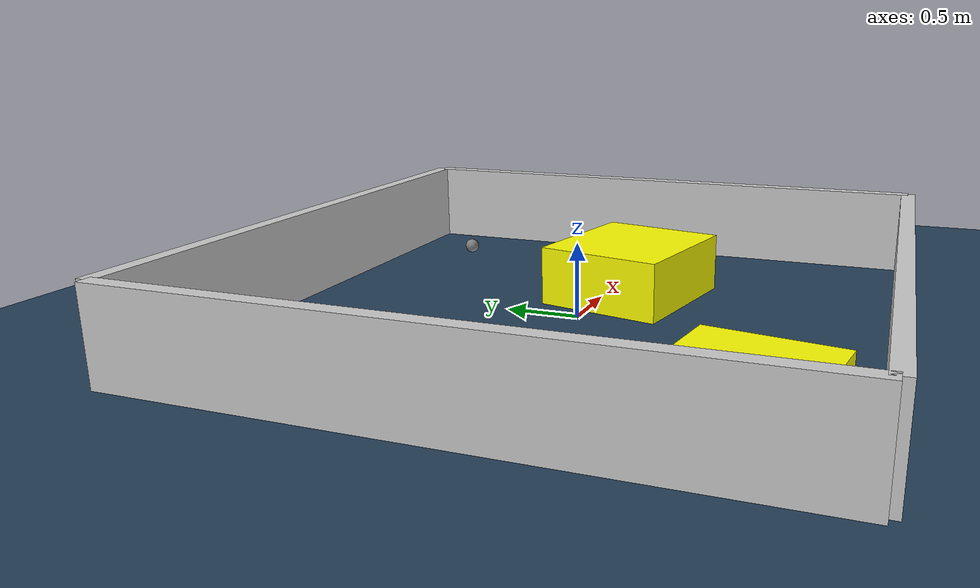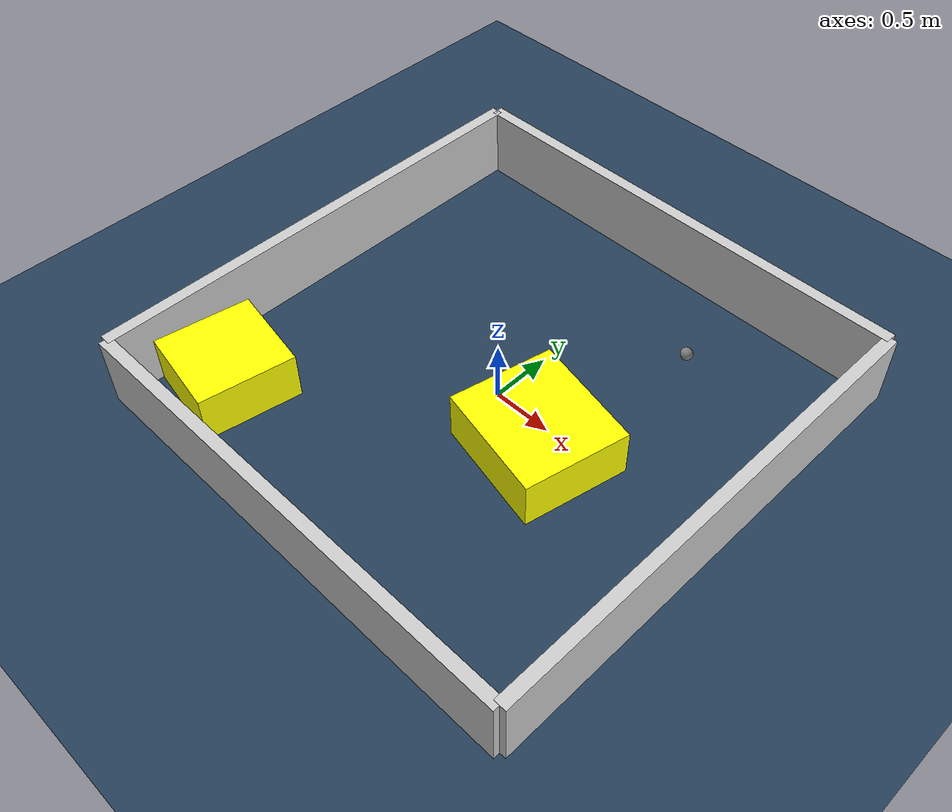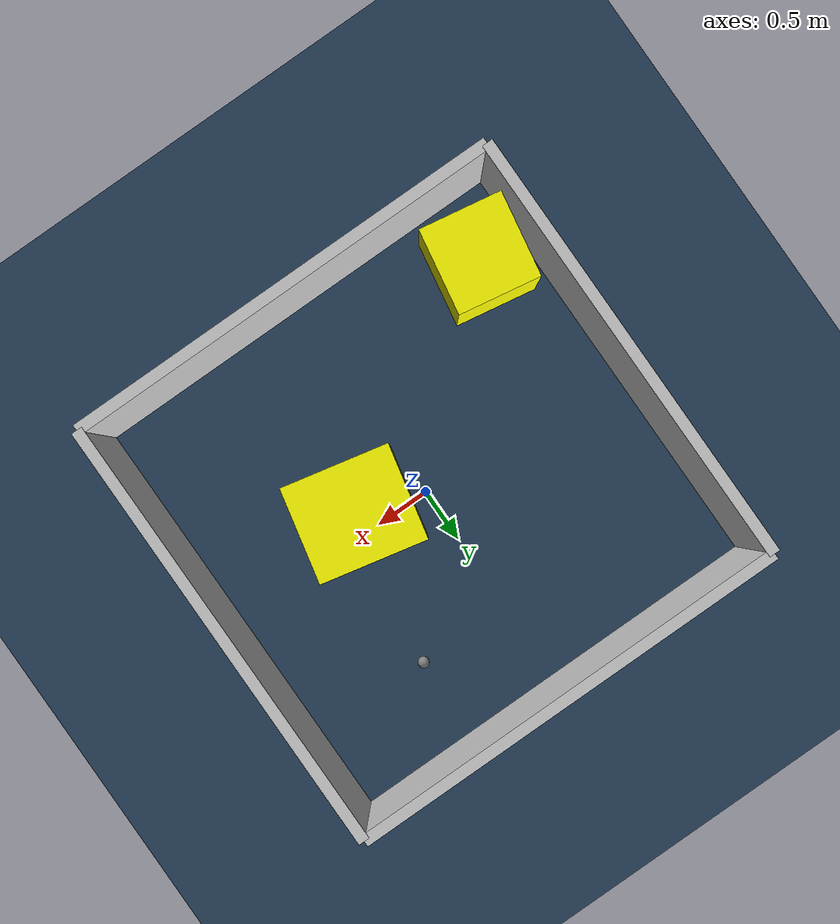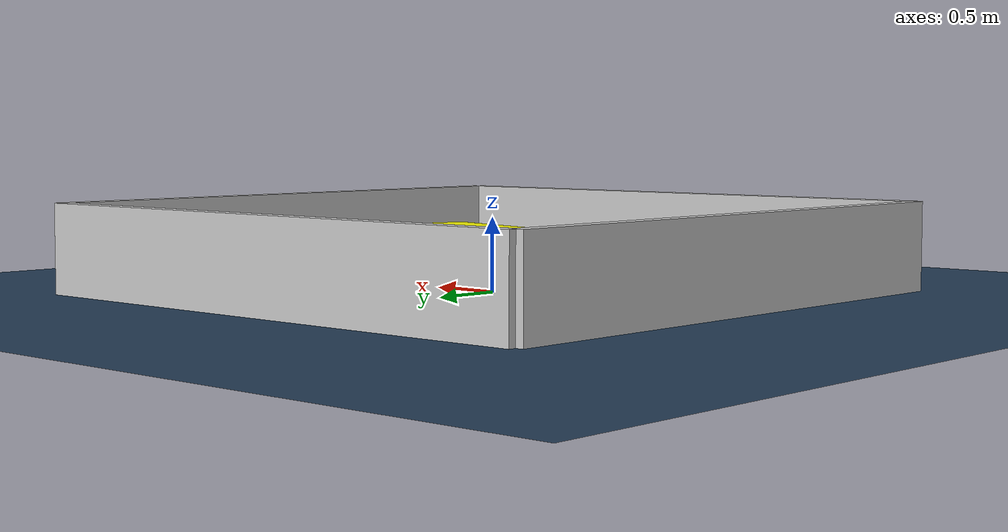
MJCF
<?xml version="1.0" ?>
<mujoco model="generated_environment">
  <option timestep="0.01" integrator="RK4" cone="elliptic"/>
  <default>
    <geom density="1"/>
  </default>
  <asset>
    <texture builtin="gradient" height="3072" rgb1="0.3 0.5 0.7" rgb2="0 0 0" type="skybox" width="512"/>
    <texture builtin="checker" height="300" mark="edge" markrgb="0.8 0.8 0.8" name="groundplane" rgb1="0.2 0.3 0.4" rgb2="0.1 0.2 0.3" type="2d" width="300"/>
    <material name="groundplane" reflectance="0.2" texrepeat="5 5" texture="groundplane" texuniform="true"/>
    <material name="robot" rgba="0.0 1.0 0.0 1"/>
  </asset>
  <worldbody>
    <light dir="0 0 -1" directional="true" pos="0 0 1.5"/>
    <geom condim="4" friction="1.0 0.005 0.001" material="groundplane" name="floor" size="0 0 0.05" type="plane"/>
    <body name="walls">
      <geom name="wall_1" condim="4" pos="-2.0 0.0 0.3" rgba="0.800000011920929 0.800000011920929 0.800000011920929 1.0" size="0.05 2.0 0.3" type="box"/>
      <geom name="wall_2" condim="4" pos="2.0 0.0 0.3" rgba="0.800000011920929 0.800000011920929 0.800000011920929 1.0" size="0.05 2.0 0.3" type="box"/>
      <geom name="wall_3" condim="4" pos="0.0 -2.0 0.3" rgba="0.800000011920929 0.800000011920929 0.800000011920929 1.0" size="2.0 0.05 0.3" type="box"/>
      <geom name="wall_4" condim="4" pos="0.0 2.0 0.3" rgba="0.800000011920929 0.800000011920929 0.800000011920929 1.0" size="2.0 0.05 0.3" type="box"/>
    </body>
    <body name="robot">
      <joint name="joint_x" type="slide" pos="0 0 0" axis="1 0 0"/>
      <joint name="joint_y" type="slide" pos="0 0 0" axis="0 1 0"/>
      <geom name="robot" type="sphere" pos="0.8446200360461416 1.1743748426039549 0.2" size="0.05" mass="5." friction="1.0 0.005 0.0001" condim="4"/>
      <site name="sensor_ball"/>
    </body>
    <body name="obstacle_1_movable">
      <geom name="obstacle_1_movable" condim="4" pos="-1.4988059082077636 -1.3588279117295672 0.2" euler="0 0 260.28307931510705" friction="1.0 0.005 0.001" rgba="1 1 0 1" size="0.3902934511438842 0.37704162297121613 0.2" type="box" mass="0.1"/>
      <joint type="free"/>
    </body>
    <body name="obstacle_2_movable">
      <geom name="obstacle_2_movable" condim="4" pos="0.5876806977222917 -0.1922529656321743 0.2" euler="0 0 347.7312156221298" friction="1.0 0.005 0.001" rgba="1 1 0 1" size="0.4866877759612035 0.4315154179701896 0.2" type="box" mass="0.1"/>
      <joint type="free"/>
    </body>
  </worldbody>
  <actuator>
    <motor name="actuator_x" joint="joint_x" gear="1" ctrlrange="-1 1"/>
    <motor name="actuator_y" joint="joint_y" gear="1" ctrlrange="-1 1"/>
  </actuator>
</mujoco>
